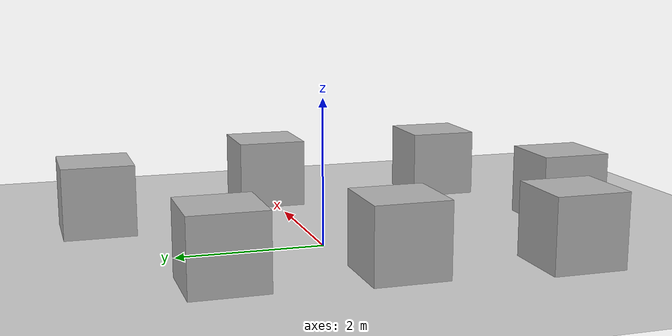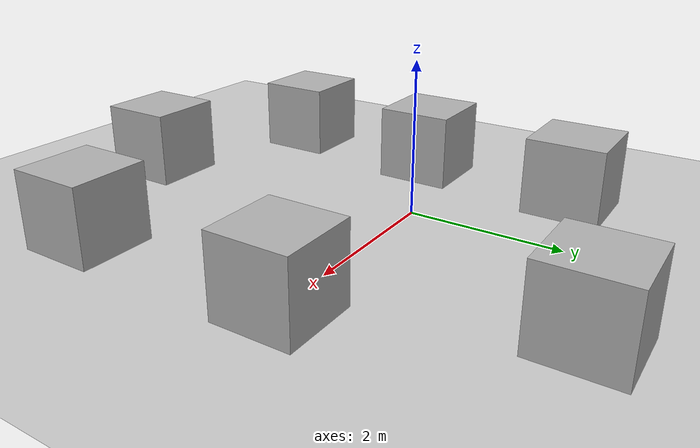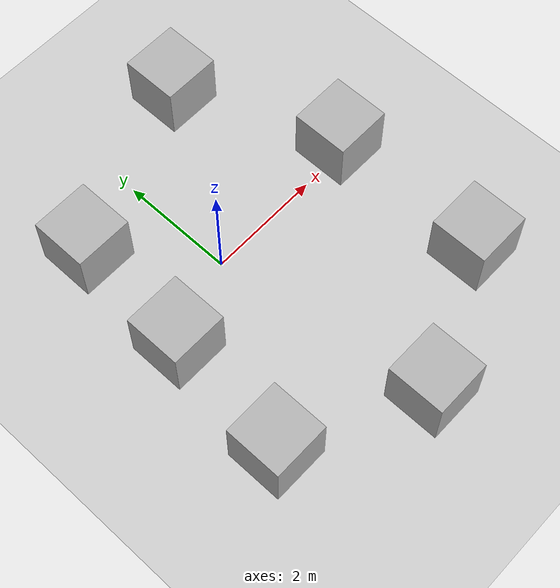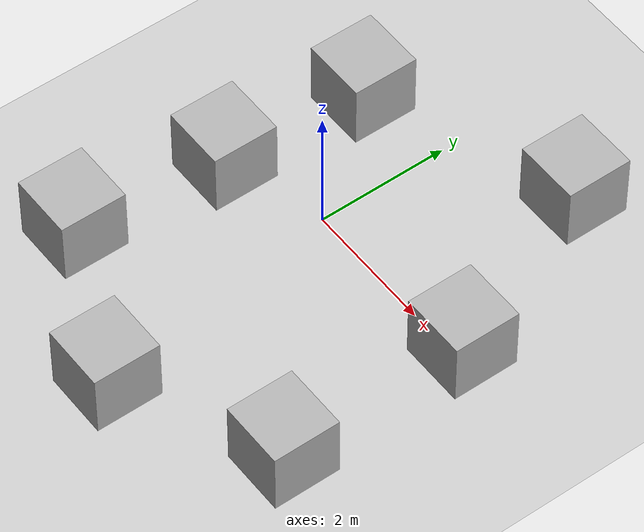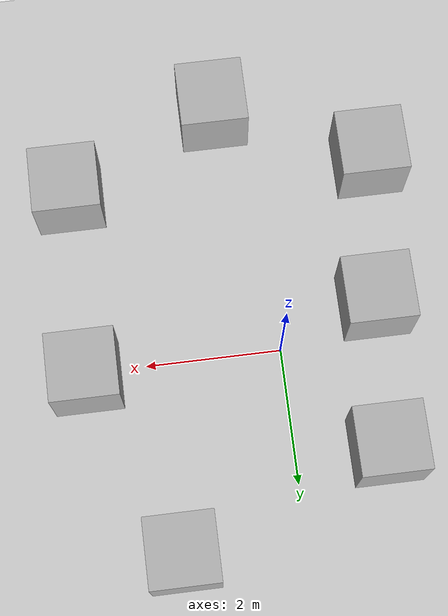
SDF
<sdf version='1.10'>
  <world name='empty'>
    <physics name='1ms' type='ignored'>
      <max_step_size>0.001</max_step_size>
      <real_time_factor>1</real_time_factor>
      <real_time_update_rate>1000</real_time_update_rate>
    </physics>
    <plugin name='gz::sim::systems::Physics' filename='gz-sim-physics-system'/>
    <plugin name='gz::sim::systems::UserCommands' filename='gz-sim-user-commands-system'/>
    <plugin name='gz::sim::systems::SceneBroadcaster' filename='gz-sim-scene-broadcaster-system'/>
    <plugin name='gz::sim::systems::Contact' filename='gz-sim-contact-system'/>
    <plugin name='gz::sim::systems::Sensors' filename='gz-sim-sensors-system'>
      <render_engine>ogre2</render_engine>
    </plugin>
    <plugin name='gz::sim::systems::Imu' filename='gz-sim-imu-system'/>

    <gravity>0 0 -9.8000000000000007</gravity>
    <magnetic_field>5.5644999999999998e-06 2.2875799999999999e-05 -4.2388400000000002e-05</magnetic_field>
    <atmosphere type='adiabatic'/>
    <scene>
      <ambient>0.400000006 0.400000006 0.400000006 1</ambient>
      <background>0.699999988 0.699999988 0.699999988 1</background>
      <shadows>true</shadows>
    </scene>
    <model name='ground_plane'>
      <static>true</static>
      <link name='link'>
        <collision name='collision'>
          <geometry>
            <plane>
              <normal>0 0 1</normal>
              <size>100 100</size>
            </plane>
          </geometry>
          <surface>
            <friction>
              <ode/>
            </friction>
            <bounce/>
            <contact/>
          </surface>
        </collision>
        <visual name='visual'>
          <geometry>
            <plane>
              <normal>0 0 1</normal>
              <size>100 100</size>
            </plane>
          </geometry>
          <material>
            <ambient>0.800000012 0.800000012 0.800000012 1</ambient>
            <diffuse>0.800000012 0.800000012 0.800000012 1</diffuse>
            <specular>0.800000012 0.800000012 0.800000012 1</specular>
          </material>
        </visual>
        <pose>0 0 0 0 0 0</pose>
        <inertial>
          <pose>0 0 0 0 0 0</pose>
          <mass>1</mass>
          <inertia>
            <ixx>1</ixx>
            <ixy>0</ixy>
            <ixz>0</ixz>
            <iyy>1</iyy>
            <iyz>0</iyz>
            <izz>1</izz>
          </inertia>
        </inertial>
        <enable_wind>false</enable_wind>
      </link>
      <pose>0 0 0 0 0 0</pose>
      <self_collide>false</self_collide>
    </model>
    <model name='box'>
      <pose>2.872880299818906 0.08786802011642543 0.49999999990199806 6.2287739151293738e-22 9.3279666454713669e-22 -3.6315533669320137e-22</pose>
      <link name='box_link'>
        <inertial>
          <inertia>
            <ixx>0.16666</ixx>
            <ixy>0</ixy>
            <ixz>0</ixz>
            <iyy>0.16666</iyy>
            <iyz>0</iyz>
            <izz>0.16666</izz>
          </inertia>
          <mass>1</mass>
          <pose>0 0 0 0 0 0</pose>
        </inertial>
        <collision name='box_collision'>
          <geometry>
            <box>
              <size>1 1 1</size>
            </box>
          </geometry>
          <surface>
            <friction>
              <ode/>
            </friction>
            <bounce/>
            <contact/>
          </surface>
        </collision>
        <visual name='box_visual'>
          <geometry>
            <box>
              <size>1 1 1</size>
            </box>
          </geometry>
          <material>
            <ambient>0.300000012 0.300000012 0.300000012 1</ambient>
            <diffuse>0.699999988 0.699999988 0.699999988 1</diffuse>
            <specular>1 1 1 1</specular>
          </material>
        </visual>
        <pose>0 0 0 0 0 0</pose>
        <enable_wind>false</enable_wind>
      </link>
      <static>false</static>
      <self_collide>false</self_collide>
    </model>
    <model name='box_0'>
      <pose>1.7604120639415015 2.8165622275239834 0.49999999990199806 6.2287739151293738e-22 9.3279666454713669e-22 -3.6315533669320137e-22</pose>
      <link name='box_link'>
        <inertial>
          <inertia>
            <ixx>0.16666</ixx>
            <ixy>0</ixy>
            <ixz>0</ixz>
            <iyy>0.16666</iyy>
            <iyz>0</iyz>
            <izz>0.16666</izz>
          </inertia>
          <mass>1</mass>
          <pose>0 0 0 0 0 0</pose>
        </inertial>
        <collision name='box_collision'>
          <geometry>
            <box>
              <size>1 1 1</size>
            </box>
          </geometry>
          <surface>
            <friction>
              <ode/>
            </friction>
            <bounce/>
            <contact/>
          </surface>
        </collision>
        <visual name='box_visual'>
          <geometry>
            <box>
              <size>1 1 1</size>
            </box>
          </geometry>
          <material>
            <ambient>0.300000012 0.300000012 0.300000012 1</ambient>
            <diffuse>0.699999988 0.699999988 0.699999988 1</diffuse>
            <specular>1 1 1 1</specular>
          </material>
        </visual>
        <pose>0 0 0 0 0 0</pose>
        <enable_wind>false</enable_wind>
      </link>
      <static>false</static>
      <self_collide>false</self_collide>
    </model>
    <model name='box_1'>
      <pose>2.8728797696691455 -2.7488186717156777 0.49999999990199806 6.2287739151293738e-22 9.3279666454713669e-22 -3.6315533669320137e-22</pose>
      <link name='box_link'>
        <inertial>
          <inertia>
            <ixx>0.16666</ixx>
            <ixy>0</ixy>
            <ixz>0</ixz>
            <iyy>0.16666</iyy>
            <iyz>0</iyz>
            <izz>0.16666</izz>
          </inertia>
          <mass>1</mass>
          <pose>0 0 0 0 0 0</pose>
        </inertial>
        <collision name='box_collision'>
          <geometry>
            <box>
              <size>1 1 1</size>
            </box>
          </geometry>
          <surface>
            <friction>
              <ode/>
            </friction>
            <bounce/>
            <contact/>
          </surface>
        </collision>
        <visual name='box_visual'>
          <geometry>
            <box>
              <size>1 1 1</size>
            </box>
          </geometry>
          <material>
            <ambient>0.300000012 0.300000012 0.300000012 1</ambient>
            <diffuse>0.699999988 0.699999988 0.699999988 1</diffuse>
            <specular>1 1 1 1</specular>
          </material>
        </visual>
        <pose>0 0 0 0 0 0</pose>
        <enable_wind>false</enable_wind>
      </link>
      <static>false</static>
      <self_collide>false</self_collide>
    </model>
    <model name='box_2'>
      <pose>0.56428847137954197 -3.8397938729549823 0.49999999990199806 6.2287739151293738e-22 9.3279666454713669e-22 -3.6315533669320137e-22</pose>
      <link name='box_link'>
        <inertial>
          <inertia>
            <ixx>0.16666</ixx>
            <ixy>0</ixy>
            <ixz>0</ixz>
            <iyy>0.16666</iyy>
            <iyz>0</iyz>
            <izz>0.16666</izz>
          </inertia>
          <mass>1</mass>
          <pose>0 0 0 0 0 0</pose>
        </inertial>
        <collision name='box_collision'>
          <geometry>
            <box>
              <size>1 1 1</size>
            </box>
          </geometry>
          <surface>
            <friction>
              <ode/>
            </friction>
            <bounce/>
            <contact/>
          </surface>
        </collision>
        <visual name='box_visual'>
          <geometry>
            <box>
              <size>1 1 1</size>
            </box>
          </geometry>
          <material>
            <ambient>0.300000012 0.300000012 0.300000012 1</ambient>
            <diffuse>0.699999988 0.699999988 0.699999988 1</diffuse>
            <specular>1 1 1 1</specular>
          </material>
        </visual>
        <pose>0 0 0 0 0 0</pose>
        <enable_wind>false</enable_wind>
      </link>
      <static>false</static>
      <self_collide>false</self_collide>
    </model>
    <model name='box_3'>
      <pose>-1.3015454526392336 1.6537883353887892 0.49999999990199806 6.2287739151293738e-22 9.3279666454713669e-22 -3.6315533669320137e-22</pose>
      <link name='box_link'>
        <inertial>
          <inertia>
            <ixx>0.16666</ixx>
            <ixy>0</ixy>
            <ixz>0</ixz>
            <iyy>0.16666</iyy>
            <iyz>0</iyz>
            <izz>0.16666</izz>
          </inertia>
          <mass>1</mass>
          <pose>0 0 0 0 0 0</pose>
        </inertial>
        <collision name='box_collision'>
          <geometry>
            <box>
              <size>1 1 1</size>
            </box>
          </geometry>
          <surface>
            <friction>
              <ode/>
            </friction>
            <bounce/>
            <contact/>
          </surface>
        </collision>
        <visual name='box_visual'>
          <geometry>
            <box>
              <size>1 1 1</size>
            </box>
          </geometry>
          <material>
            <ambient>0.300000012 0.300000012 0.300000012 1</ambient>
            <diffuse>0.699999988 0.699999988 0.699999988 1</diffuse>
            <specular>1 1 1 1</specular>
          </material>
        </visual>
        <pose>0 0 0 0 0 0</pose>
        <enable_wind>false</enable_wind>
      </link>
      <static>false</static>
      <self_collide>false</self_collide>
    </model>
    <model name='box_4'>
      <pose>-1.4626342314222613 -0.52801127646504964 0.49999999990199806 1.7084716647436826e-21 1.7859135562978205e-21 -2.019312431235984e-22</pose>
      <link name='box_link'>
        <inertial>
          <inertia>
            <ixx>0.16666</ixx>
            <ixy>0</ixy>
            <ixz>0</ixz>
            <iyy>0.16666</iyy>
            <iyz>0</iyz>
            <izz>0.16666</izz>
          </inertia>
          <mass>1</mass>
          <pose>0 0 0 0 0 0</pose>
        </inertial>
        <collision name='box_collision'>
          <geometry>
            <box>
              <size>1 1 1</size>
            </box>
          </geometry>
          <surface>
            <friction>
              <ode/>
            </friction>
            <bounce/>
            <contact/>
          </surface>
        </collision>
        <visual name='box_visual'>
          <geometry>
            <box>
              <size>1 1 1</size>
            </box>
          </geometry>
          <material>
            <ambient>0.300000012 0.300000012 0.300000012 1</ambient>
            <diffuse>0.699999988 0.699999988 0.699999988 1</diffuse>
            <specular>1 1 1 1</specular>
          </material>
        </visual>
        <pose>0 0 0 0 0 0</pose>
        <enable_wind>false</enable_wind>
      </link>
      <static>false</static>
      <self_collide>false</self_collide>
    </model>
    <model name='box_5'>
      <pose>-1.7041899578184525 -2.7791819736388157 0.49999999990199806 6.2287739151293738e-22 9.3279666454713669e-22 -3.6315533669320137e-22</pose>
      <link name='box_link'>
        <inertial>
          <inertia>
            <ixx>0.16666</ixx>
            <ixy>0</ixy>
            <ixz>0</ixz>
            <iyy>0.16666</iyy>
            <iyz>0</iyz>
            <izz>0.16666</izz>
          </inertia>
          <mass>1</mass>
          <pose>0 0 0 0 0 0</pose>
        </inertial>
        <collision name='box_collision'>
          <geometry>
            <box>
              <size>1 1 1</size>
            </box>
          </geometry>
          <surface>
            <friction>
              <ode/>
            </friction>
            <bounce/>
            <contact/>
          </surface>
        </collision>
        <visual name='box_visual'>
          <geometry>
            <box>
              <size>1 1 1</size>
            </box>
          </geometry>
          <material>
            <ambient>0.300000012 0.300000012 0.300000012 1</ambient>
            <diffuse>0.699999988 0.699999988 0.699999988 1</diffuse>
            <specular>1 1 1 1</specular>
          </material>
        </visual>
        <pose>0 0 0 0 0 0</pose>
        <enable_wind>false</enable_wind>
      </link>
      <static>false</static>
      <self_collide>false</self_collide>
    </model>
    <light name='sun' type='directional'>
      <pose>0 0 10 0 0 0</pose>
      <cast_shadows>true</cast_shadows>
      <intensity>1</intensity>
      <direction>-0.5 0.10000000000000001 -0.90000000000000002</direction>
      <diffuse>0.800000012 0.800000012 0.800000012 1</diffuse>
      <specular>0.200000003 0.200000003 0.200000003 1</specular>
      <attenuation>
        <range>1000</range>
        <linear>0.01</linear>
        <constant>0.90000000000000002</constant>
        <quadratic>0.001</quadratic>
      </attenuation>
      <spot>
        <inner_angle>0</inner_angle>
        <outer_angle>0</outer_angle>
        <falloff>0</falloff>
      </spot>
    </light>
  </world>
</sdf>
